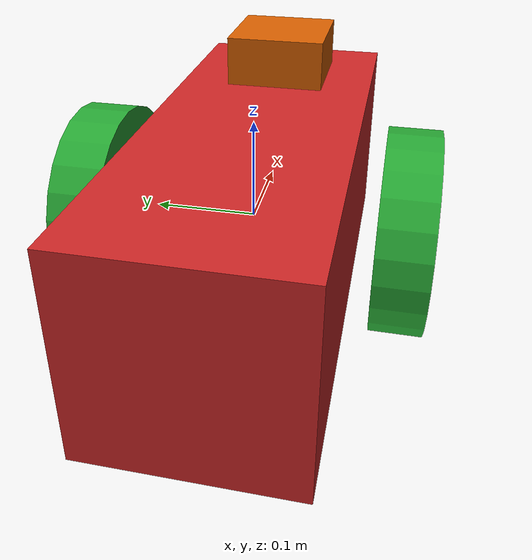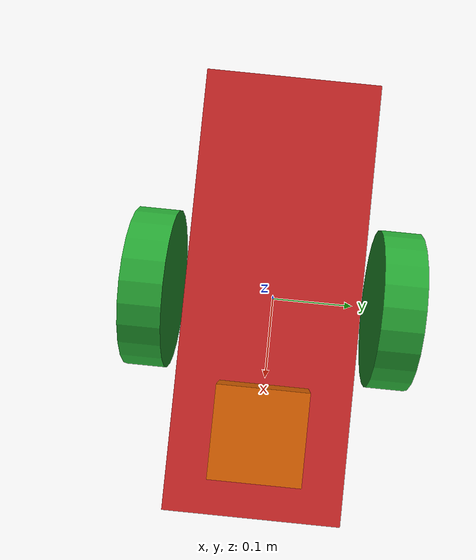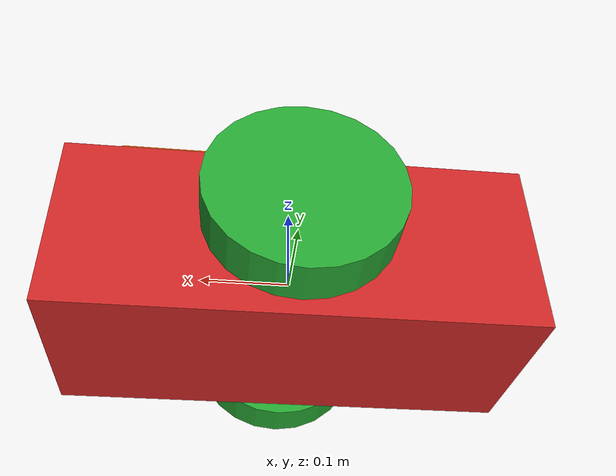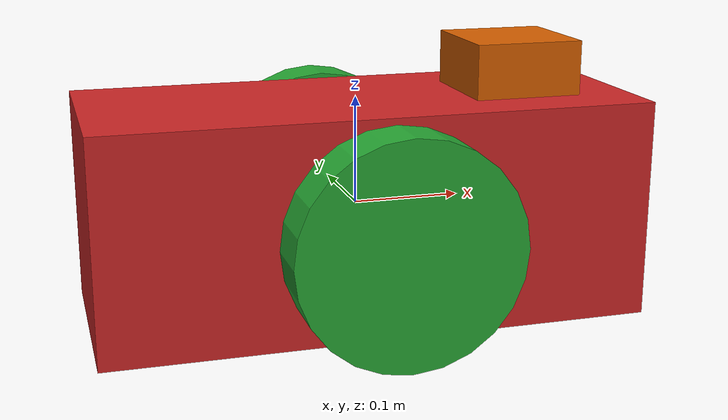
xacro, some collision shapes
<?xml version='1.0'?>

<robot name="my_robot" xmlns:xacro="http://www.ros.org/wiki/xacro">

<xacro:include filename="$(find my_robot)/urdf/my_robot.gazebo" />
  <link name="robot_footprint">
  </link>

  <joint name="robot_footprint_joint" type="fixed">
    <origin xyz="0 0 0" rpy="0 0 0" />
    <parent link="robot_footprint"/>
    <child link="chassis" />
  </joint>

  <link name='chassis'>
    <pose>0 0 0.1 0 0 0</pose>

    <inertial>
      <mass value="15.0"/>
      <origin xyz="0.0 0 0" rpy=" 0 0 0"/>
      <inertia
          ixx="0.1" ixy="0" ixz="0"
          iyy="0.1" iyz="0"
          izz="0.1"
      />
    </inertial>

    <collision name='collision'>
      <origin xyz="0 0 0" rpy=" 0 0 0"/>
      <geometry>
        <box size=".5 .2 .2"/>
      </geometry>
    </collision>

    <visual name='chassis_visual'>
      <origin xyz="0 0 0" rpy=" 0 0 0"/>
      <geometry>
        <box size=".5 .2 .2"/>
      </geometry>
    </visual>

    <collision name='back_caster_collision'>
      <origin xyz="-0.15 0 -0.05" rpy=" 0 0 0"/>
      <geometry>
        <sphere radius="0.0499"/>
      </geometry>
    </collision>

    <visual name='back_caster_visual'>
      <origin xyz="-0.15 0 -0.05" rpy=" 0 0 0"/>
      <geometry>
        <sphere radius="0.05"/>
      </geometry>
    </visual>

    <collision name='front_caster_collision'>
      <origin xyz="0.15 0 -0.05" rpy=" 0 0 0"/>
      <geometry>
        <sphere radius="0.0499"/>
      </geometry>
    </collision>

    <visual name='front_caster_visual'>
      <origin xyz="0.15 0 -0.05" rpy=" 0 0 0"/>
      <geometry>
        <sphere radius="0.05"/>
      </geometry>
    </visual>
  </link>
  <gazebo reference="chassis">
    <material>Gazebo/Red</material>
    </gazebo>

  <link name='left_wheel'>
    <inertial>
      <origin xyz="0 0 0" rpy="0 1.5707 1.5707"/>
      <mass value="5"/>
      <inertia
          ixx="0.1" ixy="0" ixz="0"
          iyy="0.1" iyz="0"
          izz="0.1"
      />
    </inertial>

    <visual>
      <origin xyz="0 0 0" rpy="0 1.5707 1.5707"/>
      <geometry>
        <cylinder radius="0.1" length= "0.05"/>
      </geometry>
    </visual>

    <collision>
      <origin xyz="0 0 0" rpy=" 0 1.5707 1.5707"/>
      <geometry>
        <cylinder radius="0.1" length= "0.05"/>
      </geometry>
    </collision>
    </link>
    <gazebo reference="left_wheel">
    <material>Gazebo/Green</material>
    </gazebo>

    <link name='right_wheel'>
    <inertial>
      <origin xyz="0 0 0" rpy=" 0 1.5707 1.5707"/>
      <mass value="5"/>
      <inertia
          ixx="0.1" ixy="0" ixz="0"
          iyy="0.1" iyz="0"
          izz="0.1"
      />
    </inertial>

    <collision>
      <origin xyz="0 0 0" rpy="0 1.5707 1.5707"/>
      <geometry>
        <cylinder radius="0.1" length= "0.05"/>
      </geometry>
    </collision>

    <visual>
      <origin xyz="0 0 0" rpy=" 0 1.5707 1.5707"/>
      <geometry>
        <cylinder radius="0.1" length= "0.05"/>
      </geometry>
    </visual>
    </link>

    <gazebo reference="right_wheel">
    <material>Gazebo/Green</material>
    </gazebo>

    <joint type="continuous" name="left_wheel_hinge">
    <origin xyz="0 0.15 0" rpy="0 0 0"/>
    <child link="left_wheel"/>
    <parent link="chassis"/>
    <axis xyz="0 1 0" rpy="0 0 0"/>
    <limit effort="10000" velocity="1000"/>
    <dynamics damping="1.0" friction="1.0"/>
    </joint>

    <joint type="continuous" name="right_wheel_hinge">
    <origin xyz="0 -0.15 0" rpy="0 0 0"/>
    <child link="right_wheel"/>
    <parent link="chassis"/>
    <axis xyz="0 1 0" rpy="0 0 0"/>
    <limit effort="10000" velocity="1000"/>
    <dynamics damping="1.0" friction="1.0"/>
    </joint>

    <link name='camera'>

    <inertial>
      <origin xyz="0 0 0" rpy=" 0 0 0"/>
      <mass value="0.1"/>
      <inertia
          ixx="1e-6" ixy="0" ixz="0"
          iyy="1e-6" iyz="0"
          izz="1e-6"
      />
    </inertial>

    <collision>
      <origin xyz="0 0 0" rpy=" 0 0 0"/>
      <geometry>
        <box size="0.05 0.05 0.05"/>
      </geometry>
    </collision>

    <visual>
      <origin xyz="0 0 0" rpy=" 0 0 0"/>
      <geometry>
        <box size="0.05 0.05 0.05"/>
      </geometry>
    </visual>
    </link>

    <joint type="fixed" name="camera_joint">
    <origin xyz="0.2 0 0" rpy="0 0 0"/>
    <child link="camera"/>
    <parent link="chassis"/>
    <axis xyz="0 1 0" rpy="0 0 0"/>
    </joint>

    <link name='hokuyo'>

    <inertial>
      <origin xyz="0 0 0" rpy=" 0 0 0"/>
      <mass value="1e-5"/>
      <inertia
          ixx="1e-6" ixy="0" ixz="0"
          iyy="1e-6" iyz="0"
          izz="1e-6"
      />
    </inertial>

    <collision>
      <origin xyz="0 0 0" rpy=" 0 0 0"/>
      <geometry>
        <box size="0.1 0.1 0.1"/>
      </geometry>
    </collision>

    <visual>
      <origin xyz="0 0 0" rpy=" 0 0 0"/>
      <geometry>
        <mesh filename="package://my_robot/meshes/hokuyo.dae"/>
      </geometry>
    </visual>
    </link>

    <joint type="fixed" name="hokuyo_joint">
    <origin xyz="0.15 0 0.1" rpy="0 0 0"/>
    <child link="hokuyo"/>
    <parent link="chassis"/>
    <axis xyz="0 1 0" rpy="0 0 0"/>
    </joint>

</robot>
